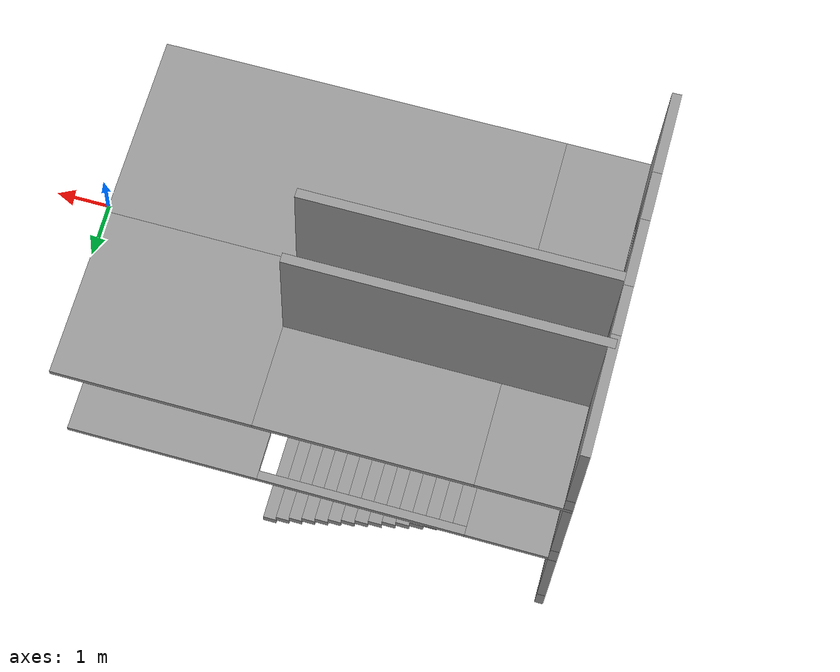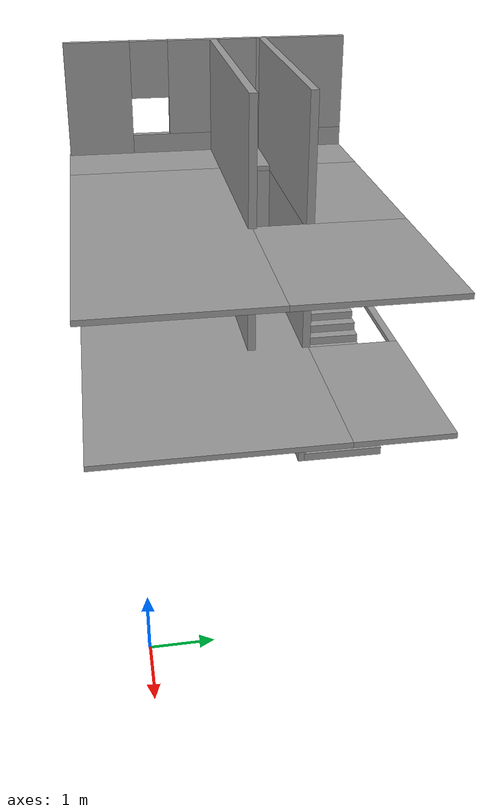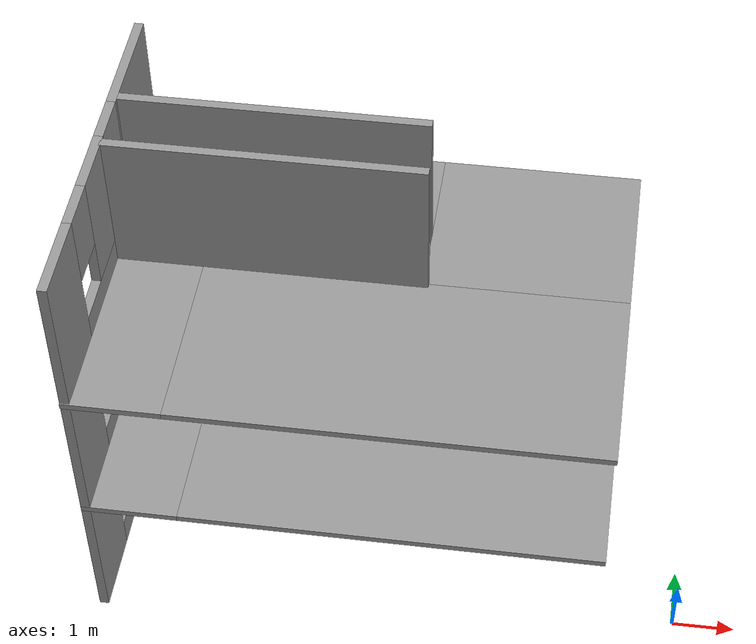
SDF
<sdf version="1.6">
 <model name="simple_building">
  <pose>-5.37242 2.16354 0 0 -0 0</pose>
  <link name="Floor_1">
   <pose>0 0.011464 2.5 0 -0 0</pose>
   <visual name="Floor_1_Visual_0">
    <pose>-3.37449 0 0.05 0 -0 0</pose>
    <geometry><box><size>1.54112 6 0.1</size></box></geometry>
    <material>
     <script><uri>file://media/materials/scripts/gazebo.material</uri><name>Gazebo/Grey</name></script>
     <ambient>1 1 1 1</ambient>
    </material>
   </visual>
   <collision name="Floor_1_Collision_0">
    <geometry><box><size>1.54112 6 0.1</size></box></geometry>
    <pose>-3.37449 0 0.05 0 -0 0</pose>
   </collision>
   <visual name="Floor_1_Visual_1">
    <pose>0.77056 -0.869196 0.05 0 -0 0</pose>
    <geometry><box><size>6.74898 4.26161 0.1</size></box></geometry>
    <material>
     <script><uri>file://media/materials/scripts/gazebo.material</uri><name>Gazebo/Grey</name></script>
     <ambient>1 1 1 1</ambient>
    </material>
   </visual>
   <collision name="Floor_1_Collision_1">
    <geometry><box><size>6.74898 4.26161 0.1</size></box></geometry>
    <pose>0.77056 -0.869196 0.05 0 -0 0</pose>
   </collision>
   <visual name="Floor_1_Visual_2">
    <pose>2.52056 2.1308 0.05 0 -0 0</pose>
    <geometry><box><size>3.24898 1.73839 0.1</size></box></geometry>
    <material>
     <script><uri>file://media/materials/scripts/gazebo.material</uri><name>Gazebo/Grey</name></script>
     <ambient>1 1 1 1</ambient>
    </material>
   </visual>
   <collision name="Floor_1_Collision_2">
    <geometry><box><size>3.24898 1.73839 0.1</size></box></geometry>
    <pose>2.52056 2.1308 0.05 0 -0 0</pose>
   </collision>
   <visual name="Floor_1_Visual_3">
    <pose>-0.85393 2.92738 0.05 0 -0 0</pose>
    <geometry><box><size>3.5 0.145251 0.1</size></box></geometry>
    <material>
     <script><uri>file://media/materials/scripts/gazebo.material</uri><name>Gazebo/Grey</name></script>
     <ambient>1 1 1 1</ambient>
    </material>
   </visual>
   <collision name="Floor_1_Collision_3">
    <geometry><box><size>3.5 0.145251 0.1</size></box></geometry>
    <pose>-0.85393 2.92738 0.05 0 -0 0</pose>
   </collision>
  </link>
  <link name="Floor_2">
   <pose>0.000567 0 5 0 -0 0</pose>
   <visual name="Floor_2_Visual_0">
    <pose>-3.37689 0 0.05 0 -0 0</pose>
    <geometry><box><size>1.53518 6.02293 0.1</size></box></geometry>
    <material>
     <script><uri>file://media/materials/scripts/gazebo.material</uri><name>Gazebo/Grey</name></script>
     <ambient>1 1 1 1</ambient>
    </material>
   </visual>
   <collision name="Floor_2_Collision_0">
    <geometry><box><size>1.53518 6.02293 0.1</size></box></geometry>
    <pose>-3.37689 0 0.05 0 -0 0</pose>
   </collision>
   <visual name="Floor_2_Visual_1">
    <pose>0.767592 -1.4216 0.05 0 -0 0</pose>
    <geometry><box><size>6.75378 3.17973 0.1</size></box></geometry>
    <material>
     <script><uri>file://media/materials/scripts/gazebo.material</uri><name>Gazebo/Grey</name></script>
     <ambient>1 1 1 1</ambient>
    </material>
   </visual>
   <collision name="Floor_2_Collision_1">
    <geometry><box><size>6.75378 3.17973 0.1</size></box></geometry>
    <pose>0.767592 -1.4216 0.05 0 -0 0</pose>
   </collision>
   <visual name="Floor_2_Visual_2">
    <pose>2.51759 1.58986 0.05 0 -0 0</pose>
    <geometry><box><size>3.25378 2.8432 0.1</size></box></geometry>
    <material>
     <script><uri>file://media/materials/scripts/gazebo.material</uri><name>Gazebo/Grey</name></script>
     <ambient>1 1 1 1</ambient>
    </material>
   </visual>
   <collision name="Floor_2_Collision_2">
    <geometry><box><size>3.25378 2.8432 0.1</size></box></geometry>
    <pose>2.51759 1.58986 0.05 0 -0 0</pose>
   </collision>
   <visual name="Floor_2_Visual_3">
    <pose>-0.859299 2.08986 0.05 0 -0 0</pose>
    <geometry><box><size>3.5 1.8432 0.1</size></box></geometry>
    <material>
     <script><uri>file://media/materials/scripts/gazebo.material</uri><name>Gazebo/Grey</name></script>
     <ambient>1 1 1 1</ambient>
    </material>
   </visual>
   <collision name="Floor_2_Collision_3">
    <geometry><box><size>3.5 1.8432 0.1</size></box></geometry>
    <pose>-0.859299 2.08986 0.05 0 -0 0</pose>
   </collision>
  </link>
  <link name="Stairs_0">
   <visual name="Stairs_0_Visual_0">
    <pose>0.779404 2.06964 0.083333 0 -0 -1.5708</pose>
    <geometry><box><size>1.59314 0.233333 0.166667</size></box></geometry>
    <material>
     <script><uri>file://media/materials/scripts/gazebo.material</uri><name>Gazebo/Grey</name></script>
     <ambient>1 1 1 1</ambient>
    </material>
   </visual>
   <collision name="Stairs_0_Collision_0">
    <geometry><box><size>1.59314 0.233333 0.166667</size></box></geometry>
    <pose>0.779404 2.06964 0.083333 0 -0 -1.5708</pose>
   </collision>
   <visual name="Stairs_0_Visual_1">
    <pose>0.54607 2.06964 0.25 0 -0 -1.5708</pose>
    <geometry><box><size>1.59314 0.233333 0.166667</size></box></geometry>
    <material>
     <script><uri>file://media/materials/scripts/gazebo.material</uri><name>Gazebo/Grey</name></script>
     <ambient>1 1 1 1</ambient>
    </material>
   </visual>
   <collision name="Stairs_0_Collision_1">
    <geometry><box><size>1.59314 0.233333 0.166667</size></box></geometry>
    <pose>0.54607 2.06964 0.25 0 -0 -1.5708</pose>
   </collision>
   <visual name="Stairs_0_Visual_2">
    <pose>0.312737 2.06964 0.416667 0 -0 -1.5708</pose>
    <geometry><box><size>1.59314 0.233333 0.166667</size></box></geometry>
    <material>
     <script><uri>file://media/materials/scripts/gazebo.material</uri><name>Gazebo/Grey</name></script>
     <ambient>1 1 1 1</ambient>
    </material>
   </visual>
   <collision name="Stairs_0_Collision_2">
    <geometry><box><size>1.59314 0.233333 0.166667</size></box></geometry>
    <pose>0.312737 2.06964 0.416667 0 -0 -1.5708</pose>
   </collision>
   <visual name="Stairs_0_Visual_3">
    <pose>0.079404 2.06964 0.583333 0 -0 -1.5708</pose>
    <geometry><box><size>1.59314 0.233333 0.166667</size></box></geometry>
    <material>
     <script><uri>file://media/materials/scripts/gazebo.material</uri><name>Gazebo/Grey</name></script>
     <ambient>1 1 1 1</ambient>
    </material>
   </visual>
   <collision name="Stairs_0_Collision_3">
    <geometry><box><size>1.59314 0.233333 0.166667</size></box></geometry>
    <pose>0.079404 2.06964 0.583333 0 -0 -1.5708</pose>
   </collision>
   <visual name="Stairs_0_Visual_4">
    <pose>-0.153929 2.06964 0.75 0 -0 -1.5708</pose>
    <geometry><box><size>1.59314 0.233333 0.166667</size></box></geometry>
    <material>
     <script><uri>file://media/materials/scripts/gazebo.material</uri><name>Gazebo/Grey</name></script>
     <ambient>1 1 1 1</ambient>
    </material>
   </visual>
   <collision name="Stairs_0_Collision_4">
    <geometry><box><size>1.59314 0.233333 0.166667</size></box></geometry>
    <pose>-0.153929 2.06964 0.75 0 -0 -1.5708</pose>
   </collision>
   <visual name="Stairs_0_Visual_5">
    <pose>-0.387263 2.06964 0.916667 0 -0 -1.5708</pose>
    <geometry><box><size>1.59314 0.233333 0.166667</size></box></geometry>
    <material>
     <script><uri>file://media/materials/scripts/gazebo.material</uri><name>Gazebo/Grey</name></script>
     <ambient>1 1 1 1</ambient>
    </material>
   </visual>
   <collision name="Stairs_0_Collision_5">
    <geometry><box><size>1.59314 0.233333 0.166667</size></box></geometry>
    <pose>-0.387263 2.06964 0.916667 0 -0 -1.5708</pose>
   </collision>
   <visual name="Stairs_0_Visual_6">
    <pose>-0.620596 2.06964 1.08333 0 -0 -1.5708</pose>
    <geometry><box><size>1.59314 0.233333 0.166667</size></box></geometry>
    <material>
     <script><uri>file://media/materials/scripts/gazebo.material</uri><name>Gazebo/Grey</name></script>
     <ambient>1 1 1 1</ambient>
    </material>
   </visual>
   <collision name="Stairs_0_Collision_6">
    <geometry><box><size>1.59314 0.233333 0.166667</size></box></geometry>
    <pose>-0.620596 2.06964 1.08333 0 -0 -1.5708</pose>
   </collision>
   <visual name="Stairs_0_Visual_7">
    <pose>-0.85393 2.06964 1.25 0 -0 -1.5708</pose>
    <geometry><box><size>1.59314 0.233333 0.166667</size></box></geometry>
    <material>
     <script><uri>file://media/materials/scripts/gazebo.material</uri><name>Gazebo/Grey</name></script>
     <ambient>1 1 1 1</ambient>
    </material>
   </visual>
   <collision name="Stairs_0_Collision_7">
    <geometry><box><size>1.59314 0.233333 0.166667</size></box></geometry>
    <pose>-0.85393 2.06964 1.25 0 -0 -1.5708</pose>
   </collision>
   <visual name="Stairs_0_Visual_8">
    <pose>-1.08726 2.06964 1.41667 0 -0 -1.5708</pose>
    <geometry><box><size>1.59314 0.233333 0.166667</size></box></geometry>
    <material>
     <script><uri>file://media/materials/scripts/gazebo.material</uri><name>Gazebo/Grey</name></script>
     <ambient>1 1 1 1</ambient>
    </material>
   </visual>
   <collision name="Stairs_0_Collision_8">
    <geometry><box><size>1.59314 0.233333 0.166667</size></box></geometry>
    <pose>-1.08726 2.06964 1.41667 0 -0 -1.5708</pose>
   </collision>
   <visual name="Stairs_0_Visual_9">
    <pose>-1.3206 2.06964 1.58333 0 -0 -1.5708</pose>
    <geometry><box><size>1.59314 0.233333 0.166667</size></box></geometry>
    <material>
     <script><uri>file://media/materials/scripts/gazebo.material</uri><name>Gazebo/Grey</name></script>
     <ambient>1 1 1 1</ambient>
    </material>
   </visual>
   <collision name="Stairs_0_Collision_9">
    <geometry><box><size>1.59314 0.233333 0.166667</size></box></geometry>
    <pose>-1.3206 2.06964 1.58333 0 -0 -1.5708</pose>
   </collision>
   <visual name="Stairs_0_Visual_10">
    <pose>-1.55393 2.06964 1.75 0 -0 -1.5708</pose>
    <geometry><box><size>1.59314 0.233333 0.166667</size></box></geometry>
    <material>
     <script><uri>file://media/materials/scripts/gazebo.material</uri><name>Gazebo/Grey</name></script>
     <ambient>1 1 1 1</ambient>
    </material>
   </visual>
   <collision name="Stairs_0_Collision_10">
    <geometry><box><size>1.59314 0.233333 0.166667</size></box></geometry>
    <pose>-1.55393 2.06964 1.75 0 -0 -1.5708</pose>
   </collision>
   <visual name="Stairs_0_Visual_11">
    <pose>-1.78726 2.06964 1.91667 0 -0 -1.5708</pose>
    <geometry><box><size>1.59314 0.233333 0.166667</size></box></geometry>
    <material>
     <script><uri>file://media/materials/scripts/gazebo.material</uri><name>Gazebo/Grey</name></script>
     <ambient>1 1 1 1</ambient>
    </material>
   </visual>
   <collision name="Stairs_0_Collision_11">
    <geometry><box><size>1.59314 0.233333 0.166667</size></box></geometry>
    <pose>-1.78726 2.06964 1.91667 0 -0 -1.5708</pose>
   </collision>
   <visual name="Stairs_0_Visual_12">
    <pose>-2.0206 2.06964 2.08333 0 -0 -1.5708</pose>
    <geometry><box><size>1.59314 0.233333 0.166667</size></box></geometry>
    <material>
     <script><uri>file://media/materials/scripts/gazebo.material</uri><name>Gazebo/Grey</name></script>
     <ambient>1 1 1 1</ambient>
    </material>
   </visual>
   <collision name="Stairs_0_Collision_12">
    <geometry><box><size>1.59314 0.233333 0.166667</size></box></geometry>
    <pose>-2.0206 2.06964 2.08333 0 -0 -1.5708</pose>
   </collision>
   <visual name="Stairs_0_Visual_13">
    <pose>-2.25393 2.06964 2.25 0 -0 -1.5708</pose>
    <geometry><box><size>1.59314 0.233333 0.166667</size></box></geometry>
    <material>
     <script><uri>file://media/materials/scripts/gazebo.material</uri><name>Gazebo/Grey</name></script>
     <ambient>1 1 1 1</ambient>
    </material>
   </visual>
   <collision name="Stairs_0_Collision_13">
    <geometry><box><size>1.59314 0.233333 0.166667</size></box></geometry>
    <pose>-2.25393 2.06964 2.25 0 -0 -1.5708</pose>
   </collision>
   <visual name="Stairs_0_Visual_14">
    <pose>-2.48726 2.06964 2.41667 0 -0 -1.5708</pose>
    <geometry><box><size>1.59314 0.233333 0.166667</size></box></geometry>
    <material>
     <script><uri>file://media/materials/scripts/gazebo.material</uri><name>Gazebo/Grey</name></script>
     <ambient>1 1 1 1</ambient>
    </material>
   </visual>
   <collision name="Stairs_0_Collision_14">
    <geometry><box><size>1.59314 0.233333 0.166667</size></box></geometry>
    <pose>-2.48726 2.06964 2.41667 0 -0 -1.5708</pose>
   </collision>
  </link>
  <link name="Stairs_3">
   <visual name="Stairs_3_Visual_0">
    <pose>-2.49207 0.668263 2.58333 0 -0 1.5708</pose>
    <geometry><box><size>1 0.233333 0.166667</size></box></geometry>
    <material>
     <script><uri>file://media/materials/scripts/gazebo.material</uri><name>Gazebo/Grey</name></script>
     <ambient>1 1 1 1</ambient>
    </material>
   </visual>
   <collision name="Stairs_3_Collision_0">
    <geometry><box><size>1 0.233333 0.166667</size></box></geometry>
    <pose>-2.49207 0.668263 2.58333 0 -0 1.5708</pose>
   </collision>
   <visual name="Stairs_3_Visual_1">
    <pose>-2.25873 0.668263 2.75 0 -0 1.5708</pose>
    <geometry><box><size>1 0.233333 0.166667</size></box></geometry>
    <material>
     <script><uri>file://media/materials/scripts/gazebo.material</uri><name>Gazebo/Grey</name></script>
     <ambient>1 1 1 1</ambient>
    </material>
   </visual>
   <collision name="Stairs_3_Collision_1">
    <geometry><box><size>1 0.233333 0.166667</size></box></geometry>
    <pose>-2.25873 0.668263 2.75 0 -0 1.5708</pose>
   </collision>
   <visual name="Stairs_3_Visual_2">
    <pose>-2.0254 0.668263 2.91667 0 -0 1.5708</pose>
    <geometry><box><size>1 0.233333 0.166667</size></box></geometry>
    <material>
     <script><uri>file://media/materials/scripts/gazebo.material</uri><name>Gazebo/Grey</name></script>
     <ambient>1 1 1 1</ambient>
    </material>
   </visual>
   <collision name="Stairs_3_Collision_2">
    <geometry><box><size>1 0.233333 0.166667</size></box></geometry>
    <pose>-2.0254 0.668263 2.91667 0 -0 1.5708</pose>
   </collision>
   <visual name="Stairs_3_Visual_3">
    <pose>-1.79207 0.668263 3.08333 0 -0 1.5708</pose>
    <geometry><box><size>1 0.233333 0.166667</size></box></geometry>
    <material>
     <script><uri>file://media/materials/scripts/gazebo.material</uri><name>Gazebo/Grey</name></script>
     <ambient>1 1 1 1</ambient>
    </material>
   </visual>
   <collision name="Stairs_3_Collision_3">
    <geometry><box><size>1 0.233333 0.166667</size></box></geometry>
    <pose>-1.79207 0.668263 3.08333 0 -0 1.5708</pose>
   </collision>
   <visual name="Stairs_3_Visual_4">
    <pose>-1.55873 0.668264 3.25 0 -0 1.5708</pose>
    <geometry><box><size>1 0.233333 0.166667</size></box></geometry>
    <material>
     <script><uri>file://media/materials/scripts/gazebo.material</uri><name>Gazebo/Grey</name></script>
     <ambient>1 1 1 1</ambient>
    </material>
   </visual>
   <collision name="Stairs_3_Collision_4">
    <geometry><box><size>1 0.233333 0.166667</size></box></geometry>
    <pose>-1.55873 0.668264 3.25 0 -0 1.5708</pose>
   </collision>
   <visual name="Stairs_3_Visual_5">
    <pose>-1.3254 0.668264 3.41667 0 -0 1.5708</pose>
    <geometry><box><size>1 0.233333 0.166667</size></box></geometry>
    <material>
     <script><uri>file://media/materials/scripts/gazebo.material</uri><name>Gazebo/Grey</name></script>
     <ambient>1 1 1 1</ambient>
    </material>
   </visual>
   <collision name="Stairs_3_Collision_5">
    <geometry><box><size>1 0.233333 0.166667</size></box></geometry>
    <pose>-1.3254 0.668264 3.41667 0 -0 1.5708</pose>
   </collision>
   <visual name="Stairs_3_Visual_6">
    <pose>-1.09207 0.668264 3.58333 0 -0 1.5708</pose>
    <geometry><box><size>1 0.233333 0.166667</size></box></geometry>
    <material>
     <script><uri>file://media/materials/scripts/gazebo.material</uri><name>Gazebo/Grey</name></script>
     <ambient>1 1 1 1</ambient>
    </material>
   </visual>
   <collision name="Stairs_3_Collision_6">
    <geometry><box><size>1 0.233333 0.166667</size></box></geometry>
    <pose>-1.09207 0.668264 3.58333 0 -0 1.5708</pose>
   </collision>
   <visual name="Stairs_3_Visual_7">
    <pose>-0.858732 0.668264 3.75 0 -0 1.5708</pose>
    <geometry><box><size>1 0.233333 0.166667</size></box></geometry>
    <material>
     <script><uri>file://media/materials/scripts/gazebo.material</uri><name>Gazebo/Grey</name></script>
     <ambient>1 1 1 1</ambient>
    </material>
   </visual>
   <collision name="Stairs_3_Collision_7">
    <geometry><box><size>1 0.233333 0.166667</size></box></geometry>
    <pose>-0.858732 0.668264 3.75 0 -0 1.5708</pose>
   </collision>
   <visual name="Stairs_3_Visual_8">
    <pose>-0.625398 0.668264 3.91667 0 -0 1.5708</pose>
    <geometry><box><size>1 0.233333 0.166667</size></box></geometry>
    <material>
     <script><uri>file://media/materials/scripts/gazebo.material</uri><name>Gazebo/Grey</name></script>
     <ambient>1 1 1 1</ambient>
    </material>
   </visual>
   <collision name="Stairs_3_Collision_8">
    <geometry><box><size>1 0.233333 0.166667</size></box></geometry>
    <pose>-0.625398 0.668264 3.91667 0 -0 1.5708</pose>
   </collision>
   <visual name="Stairs_3_Visual_9">
    <pose>-0.392065 0.668264 4.08333 0 -0 1.5708</pose>
    <geometry><box><size>1 0.233333 0.166667</size></box></geometry>
    <material>
     <script><uri>file://media/materials/scripts/gazebo.material</uri><name>Gazebo/Grey</name></script>
     <ambient>1 1 1 1</ambient>
    </material>
   </visual>
   <collision name="Stairs_3_Collision_9">
    <geometry><box><size>1 0.233333 0.166667</size></box></geometry>
    <pose>-0.392065 0.668264 4.08333 0 -0 1.5708</pose>
   </collision>
   <visual name="Stairs_3_Visual_10">
    <pose>-0.158731 0.668264 4.25 0 -0 1.5708</pose>
    <geometry><box><size>1 0.233333 0.166667</size></box></geometry>
    <material>
     <script><uri>file://media/materials/scripts/gazebo.material</uri><name>Gazebo/Grey</name></script>
     <ambient>1 1 1 1</ambient>
    </material>
   </visual>
   <collision name="Stairs_3_Collision_10">
    <geometry><box><size>1 0.233333 0.166667</size></box></geometry>
    <pose>-0.158731 0.668264 4.25 0 -0 1.5708</pose>
   </collision>
   <visual name="Stairs_3_Visual_11">
    <pose>0.074602 0.668264 4.41667 0 -0 1.5708</pose>
    <geometry><box><size>1 0.233333 0.166667</size></box></geometry>
    <material>
     <script><uri>file://media/materials/scripts/gazebo.material</uri><name>Gazebo/Grey</name></script>
     <ambient>1 1 1 1</ambient>
    </material>
   </visual>
   <collision name="Stairs_3_Collision_11">
    <geometry><box><size>1 0.233333 0.166667</size></box></geometry>
    <pose>0.074602 0.668264 4.41667 0 -0 1.5708</pose>
   </collision>
   <visual name="Stairs_3_Visual_12">
    <pose>0.307935 0.668264 4.58333 0 -0 1.5708</pose>
    <geometry><box><size>1 0.233333 0.166667</size></box></geometry>
    <material>
     <script><uri>file://media/materials/scripts/gazebo.material</uri><name>Gazebo/Grey</name></script>
     <ambient>1 1 1 1</ambient>
    </material>
   </visual>
   <collision name="Stairs_3_Collision_12">
    <geometry><box><size>1 0.233333 0.166667</size></box></geometry>
    <pose>0.307935 0.668264 4.58333 0 -0 1.5708</pose>
   </collision>
   <visual name="Stairs_3_Visual_13">
    <pose>0.541269 0.668264 4.75 0 -0 1.5708</pose>
    <geometry><box><size>1 0.233333 0.166667</size></box></geometry>
    <material>
     <script><uri>file://media/materials/scripts/gazebo.material</uri><name>Gazebo/Grey</name></script>
     <ambient>1 1 1 1</ambient>
    </material>
   </visual>
   <collision name="Stairs_3_Collision_13">
    <geometry><box><size>1 0.233333 0.166667</size></box></geometry>
    <pose>0.541269 0.668264 4.75 0 -0 1.5708</pose>
   </collision>
   <visual name="Stairs_3_Visual_14">
    <pose>0.774602 0.668264 4.91667 0 -0 1.5708</pose>
    <geometry><box><size>1 0.233333 0.166667</size></box></geometry>
    <material>
     <script><uri>file://media/materials/scripts/gazebo.material</uri><name>Gazebo/Grey</name></script>
     <ambient>1 1 1 1</ambient>
    </material>
   </visual>
   <collision name="Stairs_3_Collision_14">
    <geometry><box><size>1 0.233333 0.166667</size></box></geometry>
    <pose>0.774602 0.668264 4.91667 0 -0 1.5708</pose>
   </collision>
  </link>
  <link name="Wall_1">
   <pose>-4.06892 0.011464 0 0 -0 1.5708</pose>
   <visual name="Wall_1_Visual_0">
    <pose>-2.34908 0 1.25 0 -0 0</pose>
    <geometry><box><size>1.30184 0.15 2.5</size></box></geometry>
    <material>
     <script><uri>file://media/materials/scripts/gazebo.material</uri><name>Gazebo/Grey</name></script>
     <ambient>1 1 1 1</ambient>
    </material>
   </visual>
   <collision name="Wall_1_Collision_0">
    <geometry><box><size>1.30184 0.15 2.5</size></box></geometry>
    <pose>-2.34908 0 1.25 0 -0 0</pose>
   </collision>
   <visual name="Wall_1_Visual_1">
    <pose>0.650921 0 0.25 0 -0 0</pose>
    <geometry><box><size>4.69816 0.15 0.5</size></box></geometry>
    <material>
     <script><uri>file://media/materials/scripts/gazebo.material</uri><name>Gazebo/Grey</name></script>
     <ambient>1 1 1 1</ambient>
    </material>
   </visual>
   <collision name="Wall_1_Collision_1">
    <geometry><box><size>4.69816 0.15 0.5</size></box></geometry>
    <pose>0.650921 0 0.25 0 -0 0</pose>
   </collision>
   <visual name="Wall_1_Visual_2">
    <pose>-0.309589 0 1.5 0 -0 0</pose>
    <geometry><box><size>1.17714 0.15 2</size></box></geometry>
    <material>
     <script><uri>file://media/materials/scripts/gazebo.material</uri><name>Gazebo/Grey</name></script>
     <ambient>1 1 1 1</ambient>
    </material>
   </visual>
   <collision name="Wall_1_Collision_2">
    <geometry><box><size>1.17714 0.15 2</size></box></geometry>
    <pose>-0.309589 0 1.5 0 -0 0</pose>
   </collision>
   <visual name="Wall_1_Visual_3">
    <pose>2.03949 0 1.5 0 -0 0</pose>
    <geometry><box><size>1.92102 0.15 2</size></box></geometry>
    <material>
     <script><uri>file://media/materials/scripts/gazebo.material</uri><name>Gazebo/Grey</name></script>
     <ambient>1 1 1 1</ambient>
    </material>
   </visual>
   <collision name="Wall_1_Collision_3">
    <geometry><box><size>1.92102 0.15 2</size></box></geometry>
    <pose>2.03949 0 1.5 0 -0 0</pose>
   </collision>
   <visual name="Wall_1_Visual_4">
    <pose>-1.29816 0 1.9 0 -0 0</pose>
    <geometry><box><size>0.8 0.15 1.2</size></box></geometry>
    <material>
     <script><uri>file://media/materials/scripts/gazebo.material</uri><name>Gazebo/Grey</name></script>
     <ambient>1 1 1 1</ambient>
    </material>
   </visual>
   <collision name="Wall_1_Collision_4">
    <geometry><box><size>0.8 0.15 1.2</size></box></geometry>
    <pose>-1.29816 0 1.9 0 -0 0</pose>
   </collision>
   <visual name="Wall_1_Visual_5">
    <pose>0.678979 0 1.9 0 -0 0</pose>
    <geometry><box><size>0.8 0.15 1.2</size></box></geometry>
    <material>
     <script><uri>file://media/materials/scripts/gazebo.material</uri><name>Gazebo/Grey</name></script>
     <ambient>1 1 1 1</ambient>
    </material>
   </visual>
   <collision name="Wall_1_Collision_5">
    <geometry><box><size>0.8 0.15 1.2</size></box></geometry>
    <pose>0.678979 0 1.9 0 -0 0</pose>
   </collision>
  </link>
  <link name="Wall_10">
   <pose>-1.60572 1.23127 0 0 -0 3.14159</pose>
   <visual name="Wall_10_Visual_0">
    <pose>-0.661074 0 1.25 0 -0 0</pose>
    <geometry><box><size>3.67785 0.15 2.5</size></box></geometry>
    <material>
     <script><uri>file://media/materials/scripts/gazebo.material</uri><name>Gazebo/Grey</name></script>
     <ambient>1 1 1 1</ambient>
    </material>
   </visual>
   <collision name="Wall_10_Collision_0">
    <geometry><box><size>3.67785 0.15 2.5</size></box></geometry>
    <pose>-0.661074 0 1.25 0 -0 0</pose>
   </collision>
   <visual name="Wall_10_Visual_1">
    <pose>2.28893 0 1.25 0 -0 0</pose>
    <geometry><box><size>0.422147 0.15 2.5</size></box></geometry>
    <material>
     <script><uri>file://media/materials/scripts/gazebo.material</uri><name>Gazebo/Grey</name></script>
     <ambient>1 1 1 1</ambient>
    </material>
   </visual>
   <collision name="Wall_10_Collision_1">
    <geometry><box><size>0.422147 0.15 2.5</size></box></geometry>
    <pose>2.28893 0 1.25 0 -0 0</pose>
   </collision>
   <visual name="Wall_10_Visual_2">
    <pose>1.62785 0 2.25 0 -0 0</pose>
    <geometry><box><size>0.9 0.15 0.5</size></box></geometry>
    <material>
     <script><uri>file://media/materials/scripts/gazebo.material</uri><name>Gazebo/Grey</name></script>
     <ambient>1 1 1 1</ambient>
    </material>
   </visual>
   <collision name="Wall_10_Collision_2">
    <geometry><box><size>0.9 0.15 0.5</size></box></geometry>
    <pose>1.62785 0 2.25 0 -0 0</pose>
   </collision>
  </link>
  <link name="Wall_17">
   <pose>-4.06892 0.011464 2.5 0 -0 1.5708</pose>
   <visual name="Wall_17_Visual_0">
    <pose>-2.35668 0 1.25 0 -0 0</pose>
    <geometry><box><size>1.28663 0.15 2.5</size></box></geometry>
    <material>
     <script><uri>file://media/materials/scripts/gazebo.material</uri><name>Gazebo/Grey</name></script>
     <ambient>1 1 1 1</ambient>
    </material>
   </visual>
   <collision name="Wall_17_Collision_0">
    <geometry><box><size>1.28663 0.15 2.5</size></box></geometry>
    <pose>-2.35668 0 1.25 0 -0 0</pose>
   </collision>
   <visual name="Wall_17_Visual_1">
    <pose>0.643317 0 0.25 0 -0 0</pose>
    <geometry><box><size>4.71337 0.15 0.5</size></box></geometry>
    <material>
     <script><uri>file://media/materials/scripts/gazebo.material</uri><name>Gazebo/Grey</name></script>
     <ambient>1 1 1 1</ambient>
    </material>
   </visual>
   <collision name="Wall_17_Collision_1">
    <geometry><box><size>4.71337 0.15 0.5</size></box></geometry>
    <pose>0.643317 0 0.25 0 -0 0</pose>
   </collision>
   <visual name="Wall_17_Visual_2">
    <pose>-0.309589 0 1.5 0 -0 0</pose>
    <geometry><box><size>1.20755 0.15 2</size></box></geometry>
    <material>
     <script><uri>file://media/materials/scripts/gazebo.material</uri><name>Gazebo/Grey</name></script>
     <ambient>1 1 1 1</ambient>
    </material>
   </visual>
   <collision name="Wall_17_Collision_2">
    <geometry><box><size>1.20755 0.15 2</size></box></geometry>
    <pose>-0.309589 0 1.5 0 -0 0</pose>
   </collision>
   <visual name="Wall_17_Visual_3">
    <pose>2.04709 0 1.5 0 -0 0</pose>
    <geometry><box><size>1.90581 0.15 2</size></box></geometry>
    <material>
     <script><uri>file://media/materials/scripts/gazebo.material</uri><name>Gazebo/Grey</name></script>
     <ambient>1 1 1 1</ambient>
    </material>
   </visual>
   <collision name="Wall_17_Collision_3">
    <geometry><box><size>1.90581 0.15 2</size></box></geometry>
    <pose>2.04709 0 1.5 0 -0 0</pose>
   </collision>
   <visual name="Wall_17_Visual_4">
    <pose>-1.31337 0 1.9 0 -0 0</pose>
    <geometry><box><size>0.8 0.15 1.2</size></box></geometry>
    <material>
     <script><uri>file://media/materials/scripts/gazebo.material</uri><name>Gazebo/Grey</name></script>
     <ambient>1 1 1 1</ambient>
    </material>
   </visual>
   <collision name="Wall_17_Collision_4">
    <geometry><box><size>0.8 0.15 1.2</size></box></geometry>
    <pose>-1.31337 0 1.9 0 -0 0</pose>
   </collision>
   <visual name="Wall_17_Visual_5">
    <pose>0.694188 0 1.9 0 -0 0</pose>
    <geometry><box><size>0.8 0.15 1.2</size></box></geometry>
    <material>
     <script><uri>file://media/materials/scripts/gazebo.material</uri><name>Gazebo/Grey</name></script>
     <ambient>1 1 1 1</ambient>
    </material>
   </visual>
   <collision name="Wall_17_Collision_5">
    <geometry><box><size>0.8 0.15 1.2</size></box></geometry>
    <pose>0.694188 0 1.9 0 -0 0</pose>
   </collision>
  </link>
  <link name="Wall_21">
   <collision name="Wall_21_Collision">
    <geometry><box><size>3.5 0.15 2.5</size></box></geometry>
    <pose>0 0 1.25 0 -0 0</pose>
   </collision>
   <visual name="Wall_21_Visual">
    <pose>0 0 1.25 0 -0 0</pose>
    <geometry><box><size>3.5 0.15 2.5</size></box></geometry>
    <material>
     <script><uri>file://media/materials/scripts/gazebo.material</uri><name>Gazebo/Grey</name></script>
     <ambient>1 1 1 1</ambient>
    </material>
   </visual>
   <pose>-0.855716 1.23127 2.5 0 -0 3.14159</pose>
  </link>
  <link name="Wall_22">
   <pose>-4.06892 0.011464 5 0 -0 1.5708</pose>
   <visual name="Wall_22_Visual_0">
    <pose>-2.31106 0 1.25 0 -0 0</pose>
    <geometry><box><size>1.37789 0.15 2.5</size></box></geometry>
    <material>
     <script><uri>file://media/materials/scripts/gazebo.material</uri><name>Gazebo/Grey</name></script>
     <ambient>1 1 1 1</ambient>
    </material>
   </visual>
   <collision name="Wall_22_Collision_0">
    <geometry><box><size>1.37789 0.15 2.5</size></box></geometry>
    <pose>-2.31106 0 1.25 0 -0 0</pose>
   </collision>
   <visual name="Wall_22_Visual_1">
    <pose>0.688943 0 0.25 0 -0 0</pose>
    <geometry><box><size>4.62211 0.15 0.5</size></box></geometry>
    <material>
     <script><uri>file://media/materials/scripts/gazebo.material</uri><name>Gazebo/Grey</name></script>
     <ambient>1 1 1 1</ambient>
    </material>
   </visual>
   <collision name="Wall_22_Collision_1">
    <geometry><box><size>4.62211 0.15 0.5</size></box></geometry>
    <pose>0.688943 0 0.25 0 -0 0</pose>
   </collision>
   <visual name="Wall_22_Visual_2">
    <pose>-0.271567 0 1.5 0 -0 0</pose>
    <geometry><box><size>1.10109 0.15 2</size></box></geometry>
    <material>
     <script><uri>file://media/materials/scripts/gazebo.material</uri><name>Gazebo/Grey</name></script>
     <ambient>1 1 1 1</ambient>
    </material>
   </visual>
   <collision name="Wall_22_Collision_2">
    <geometry><box><size>1.10109 0.15 2</size></box></geometry>
    <pose>-0.271567 0 1.5 0 -0 0</pose>
   </collision>
   <visual name="Wall_22_Visual_3">
    <pose>2.03949 0 1.5 0 -0 0</pose>
    <geometry><box><size>1.92102 0.15 2</size></box></geometry>
    <material>
     <script><uri>file://media/materials/scripts/gazebo.material</uri><name>Gazebo/Grey</name></script>
     <ambient>1 1 1 1</ambient>
    </material>
   </visual>
   <collision name="Wall_22_Collision_3">
    <geometry><box><size>1.92102 0.15 2</size></box></geometry>
    <pose>2.03949 0 1.5 0 -0 0</pose>
   </collision>
   <visual name="Wall_22_Visual_4">
    <pose>-1.22211 0 1.9 0 -0 0</pose>
    <geometry><box><size>0.8 0.15 1.2</size></box></geometry>
    <material>
     <script><uri>file://media/materials/scripts/gazebo.material</uri><name>Gazebo/Grey</name></script>
     <ambient>1 1 1 1</ambient>
    </material>
   </visual>
   <collision name="Wall_22_Collision_4">
    <geometry><box><size>0.8 0.15 1.2</size></box></geometry>
    <pose>-1.22211 0 1.9 0 -0 0</pose>
   </collision>
   <visual name="Wall_22_Visual_5">
    <pose>0.678979 0 1.9 0 -0 0</pose>
    <geometry><box><size>0.8 0.15 1.2</size></box></geometry>
    <material>
     <script><uri>file://media/materials/scripts/gazebo.material</uri><name>Gazebo/Grey</name></script>
     <ambient>1 1 1 1</ambient>
    </material>
   </visual>
   <collision name="Wall_22_Collision_5">
    <geometry><box><size>0.8 0.15 1.2</size></box></geometry>
    <pose>0.678979 0 1.9 0 -0 0</pose>
   </collision>
  </link>
  <link name="Wall_26">
   <collision name="Wall_26_Collision">
    <geometry><box><size>5 0.15 2.5</size></box></geometry>
    <pose>0 0 1.25 0 -0 0</pose>
   </collision>
   <visual name="Wall_26_Visual">
    <pose>0 0 1.25 0 -0 0</pose>
    <geometry><box><size>5 0.15 2.5</size></box></geometry>
    <material>
     <script><uri>file://media/materials/scripts/gazebo.material</uri><name>Gazebo/Grey</name></script>
     <ambient>1 1 1 1</ambient>
    </material>
   </visual>
   <pose>-1.60572 1.23127 5 0 -0 3.14159</pose>
  </link>
  <link name="Wall_33">
   <collision name="Wall_33_Collision">
    <geometry><box><size>5 0.15 2.5</size></box></geometry>
    <pose>0 0 1.25 0 -0 0</pose>
   </collision>
   <visual name="Wall_33_Visual">
    <pose>0 0 1.25 0 -0 0</pose>
    <geometry><box><size>5 0.15 2.5</size></box></geometry>
    <material>
     <script><uri>file://media/materials/scripts/gazebo.material</uri><name>Gazebo/Grey</name></script>
     <ambient>1 1 1 1</ambient>
    </material>
   </visual>
   <pose>-1.51879 0.163536 5 0 -0 3.14159</pose>
  </link>
  <link name="Wall_35">
   <collision name="Wall_35_Collision">
    <geometry><box><size>5 0.15 2.5</size></box></geometry>
    <pose>0 0 1.25 0 -0 0</pose>
   </collision>
   <visual name="Wall_35_Visual">
    <pose>0 0 1.25 0 -0 0</pose>
    <geometry><box><size>5 0.15 2.5</size></box></geometry>
    <material>
     <script><uri>file://media/materials/scripts/gazebo.material</uri><name>Gazebo/Grey</name></script>
     <ambient>1 1 1 1</ambient>
    </material>
   </visual>
   <pose>-1.64505 0.188555 2.5 0 -0 0</pose>
  </link>
  <static>1</static>
 </model>
</sdf>
